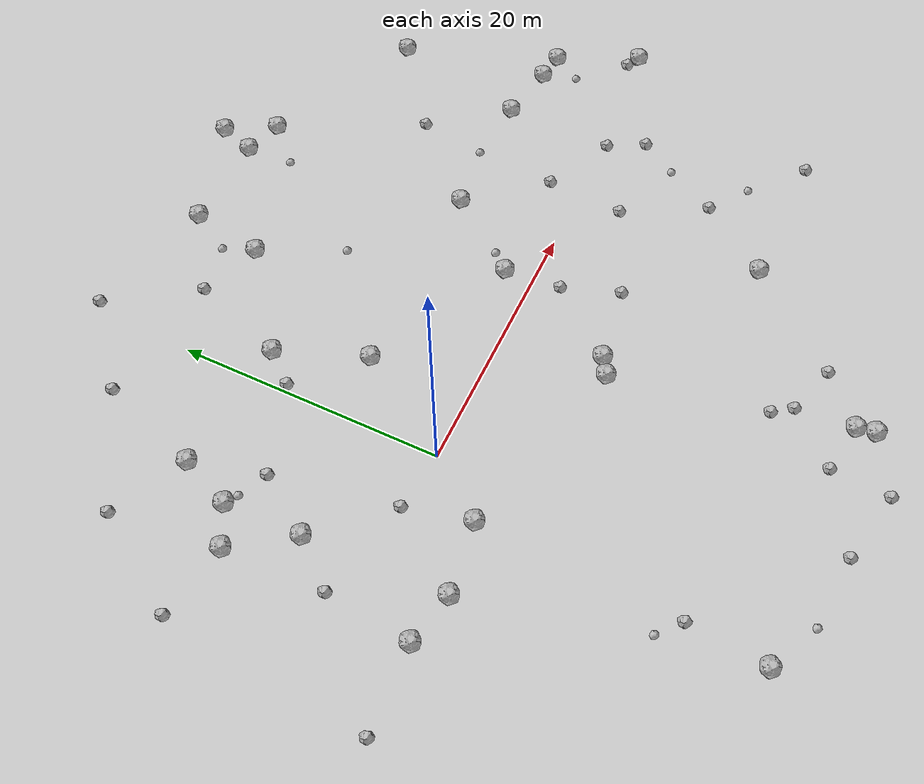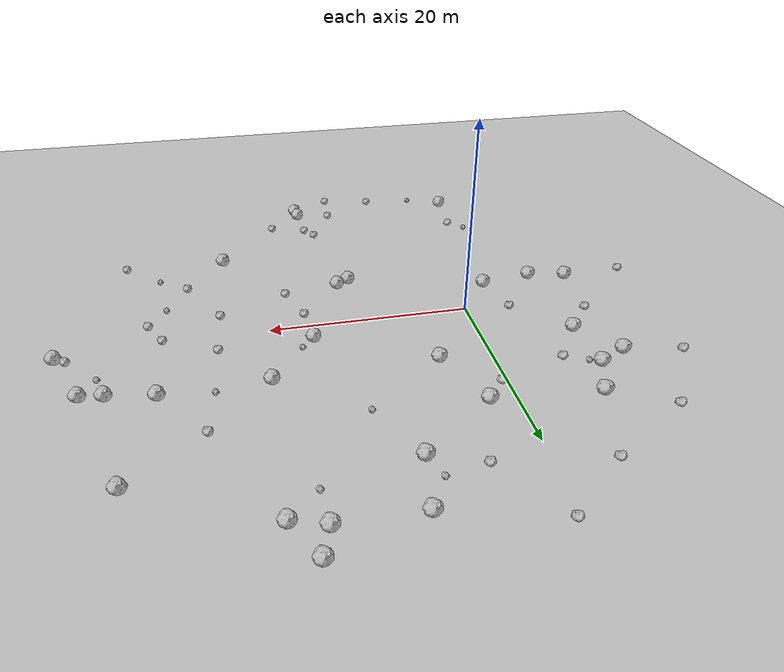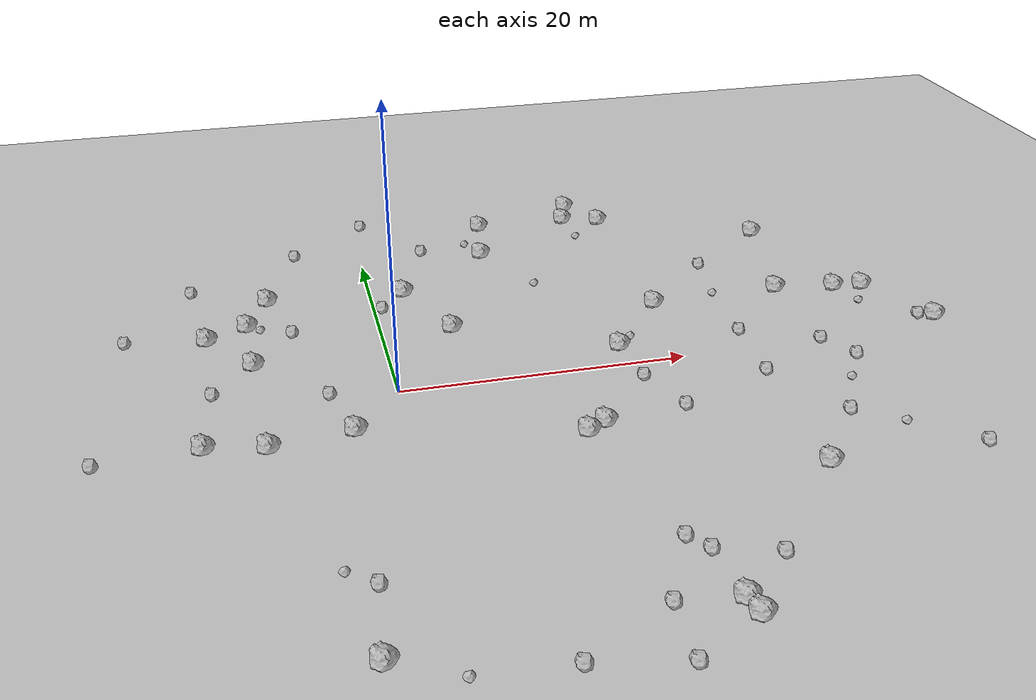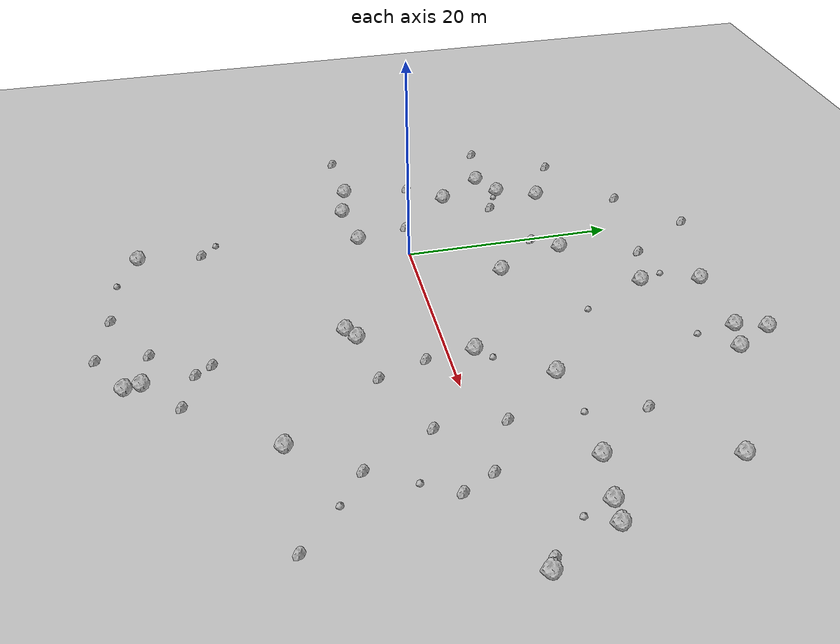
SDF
<sdf version="1.6">
 <world name="default">
  <include><uri>model://custom_ground</uri></include>
  <include><uri>model://sun</uri></include>
  <model name="rock1_0_0">
   <include><uri>model://rock1</uri><pose>-9.325859273268861 11.395108314160183 0.5 0 0 0</pose></include>
  </model>
  <model name="rock1_0_1">
   <include><uri>model://rock1</uri><pose>32.77272916011381 18.821326434862648 0.5 0 0 0</pose></include>
  </model>
  <model name="rock1_0_2">
   <include><uri>model://rock1</uri><pose>20.494058716048002 8.036670395638183 0.5 0 0 0</pose></include>
  </model>
  <model name="rock1_0_3">
   <include><uri>model://rock1</uri><pose>-9.165816178152784 5.538716321322738 0.5 0 0 0</pose></include>
  </model>
  <model name="rock1_0_4">
   <include><uri>model://rock1</uri><pose>34.89038393754093 7.5048193109880685 0.5 0 0 0</pose></include>
  </model>
  <model name="rock1_0_5">
   <include><uri>model://rock1</uri><pose>24.081980462925678 -14.849077184002226 0.5 0 0 0</pose></include>
  </model>
  <model name="rock1_0_6">
   <include><uri>model://rock1</uri><pose>10.88490199903103 -8.038815499362173 0.5 0 0 0</pose></include>
  </model>
  <model name="rock1_0_7">
   <include><uri>model://rock1</uri><pose>30.420932146796986 8.31368439147991 0.5 0 0 0</pose></include>
  </model>
  <model name="rock1_0_8">
   <include><uri>model://rock1</uri><pose>16.025471272302447 2.2451898496656995 0.5 0 0 0</pose></include>
  </model>
  <model name="rock1_0_9">
   <include><uri>model://rock1</uri><pose>-4.446693546395309 -25.61087649749245 0.5 0 0 0</pose></include>
  </model>
  <model name="rock1_0_10">
   <include><uri>model://rock1</uri><pose>12.208705323214964 -7.2310050316699765 0.5 0 0 0</pose></include>
  </model>
  <model name="rock1_0_11">
   <include><uri>model://rock1</uri><pose>2.5135233519100737 14.421944765956056 0.5 0 0 0</pose></include>
  </model>
  <model name="rock1_0_12">
   <include><uri>model://rock1</uri><pose>17.959134334480666 25.324735297423487 0.5 0 0 0</pose></include>
  </model>
  <model name="rock1_0_13">
   <include><uri>model://rock1</uri><pose>14.369802817539686 -25.350690073815702 0.5 0 0 0</pose></include>
  </model>
  <model name="rock1_0_14">
   <include><uri>model://rock1</uri><pose>20.868182732373143 24.396816842527883 0.5 0 0 0</pose></include>
  </model>
  <model name="rock1_0_15">
   <include><uri>model://rock1</uri><pose>-7.668985724154286 15.28530597783648 0.5 0 0 0</pose></include>
  </model>
  <model name="rock1_0_16">
   <include><uri>model://rock1</uri><pose>37.08834178905631 7.186391828840122 0.5 0 0 0</pose></include>
  </model>
  <model name="rock1_0_17">
   <include><uri>model://rock1</uri><pose>18.8651854831828 28.037462194587967 0.5 0 0 0</pose></include>
  </model>
  <model name="rock1_0_18">
   <include><uri>model://rock1</uri><pose>9.676334513105505 19.94417882393501 0.5 0 0 0</pose></include>
  </model>
  <model name="rock1_0_19">
   <include><uri>model://rock1</uri><pose>39.963123794459506 1.1491976966194954 0.5 0 0 0</pose></include>
  </model>
  <model name="rock1_0_20">
   <include><uri>model://rock1</uri><pose>-3.311976631417256 -4.443405541984745 0.5 0 0 0</pose></include>
  </model>
  <model name="rock1_0_21">
   <include><uri>model://rock1</uri><pose>10.652464035186199 25.46317277084769 0.5 0 0 0</pose></include>
  </model>
  <model name="rock1_0_22">
   <include><uri>model://rock1</uri><pose>5.069408518328014 7.792026259948464 0.5 0 0 0</pose></include>
  </model>
  <model name="rock1_0_23">
   <include><uri>model://rock1</uri><pose>-8.742508466582686 -5.184591756139284 0.5 0 0 0</pose></include>
  </model>
  <model name="rock1_0_24">
   <include><uri>model://rock1</uri><pose>14.625728409789836 -26.738669928540666 0.5 0 0 0</pose></include>
  </model>
  <model name="rock1_0_25">
   <include><uri>model://rock1</uri><pose>-12.198082013211282 9.900188176174645 0.5 0 0 0</pose></include>
  </model>
  <model name="rock1_0_26">
   <include><uri>model://rock1</uri><pose>-12.65587395111057 -4.35016123043259 0.5 0 0 0</pose></include>
  </model>
  <model name="rock2_0_0">
   <include><uri>model://rock2</uri><pose>-17.8799409010483 10.950787790465327 0.3 0 0 0</pose></include>
  </model>
  <model name="rock2_0_1">
   <include><uri>model://rock2</uri><pose>10.549829539883216 -24.709167111648803 0.3 0 0 0</pose></include>
  </model>
  <model name="rock2_0_2">
   <include><uri>model://rock2</uri><pose>34.60235385883319 -14.994394415011579 0.3 0 0 0</pose></include>
  </model>
  <model name="rock2_0_3">
   <include><uri>model://rock2</uri><pose>26.15279913652845 13.871309525150672 0.3 0 0 0</pose></include>
  </model>
  <model name="rock2_0_4">
   <include><uri>model://rock2</uri><pose>0.5409424549066912 12.16054857589652 0.3 0 0 0</pose></include>
  </model>
  <model name="rock2_0_5">
   <include><uri>model://rock2</uri><pose>16.370242271537272 -2.0737238437990726 0.3 0 0 0</pose></include>
  </model>
  <model name="rock2_0_6">
   <include><uri>model://rock2</uri><pose>13.031889078616693 -19.600325787458896 0.3 0 0 0</pose></include>
  </model>
  <model name="rock2_0_7">
   <include><uri>model://rock2</uri><pose>38.86930375528399 1.7307108480326399 0.3 0 0 0</pose></include>
  </model>
  <model name="rock2_0_8">
   <include><uri>model://rock2</uri><pose>-4.502110147065704 0.519439138335251 0.3 0 0 0</pose></include>
  </model>
  <model name="rock2_0_9">
   <include><uri>model://rock2</uri><pose>17.84963579860517 -6.374676612121043 0.3 0 0 0</pose></include>
  </model>
  <model name="rock2_0_10">
   <include><uri>model://rock2</uri><pose>31.70390754713133 -2.775661783326573 0.3 0 0 0</pose></include>
  </model>
  <model name="rock2_0_11">
   <include><uri>model://rock2</uri><pose>-5.102845605135602 23.085767348932443 0.3 0 0 0</pose></include>
  </model>
  <model name="rock2_0_12">
   <include><uri>model://rock2</uri><pose>-19.253556270881262 -4.656369448009599 0.3 0 0 0</pose></include>
  </model>
  <model name="rock2_0_13">
   <include><uri>model://rock2</uri><pose>-3.9273610354467756 -19.665570519971027 0.3 0 0 0</pose></include>
  </model>
  <model name="rock2_0_14">
   <include><uri>model://rock2</uri><pose>14.0269032404766 -21.011562440827902 0.3 0 0 0</pose></include>
  </model>
  <model name="rock2_0_15">
   <include><uri>model://rock2</uri><pose>-13.260986676541012 18.145455253565466 0.3 0 0 0</pose></include>
  </model>
  <model name="rock2_0_16">
   <include><uri>model://rock2</uri><pose>4.861513205942071 -27.974720390312612 0.3 0 0 0</pose></include>
  </model>
  <model name="rock2_0_17">
   <include><uri>model://rock2</uri><pose>25.057790312450898 2.5351799585521633 0.3 0 0 0</pose></include>
  </model>
  <model name="rock2_0_18">
   <include><uri>model://rock2</uri><pose>27.954919649679837 -9.464542206046485 0.3 0 0 0</pose></include>
  </model>
  <model name="rock2_0_19">
   <include><uri>model://rock2</uri><pose>0.7840664554753403 28.02637640429807 0.3 0 0 0</pose></include>
  </model>
  <model name="rock2_0_20">
   <include><uri>model://rock2</uri><pose>17.836531842781312 -22.24457372562164 0.3 0 0 0</pose></include>
  </model>
  <model name="rock2_0_21">
   <include><uri>model://rock2</uri><pose>-12.029163968752215 2.221237230681325 0.3 0 0 0</pose></include>
  </model>
  <model name="rock2_0_22">
   <include><uri>model://rock2</uri><pose>24.703523809423274 -3.386550913699754 0.3 0 0 0</pose></include>
  </model>
  <model name="rock2_0_23">
   <include><uri>model://rock2</uri><pose>30.255165122852667 -0.03410394703698216 0.3 0 0 0</pose></include>
  </model>
  <model name="rock2_0_24">
   <include><uri>model://rock2</uri><pose>-6.252732623995591 9.850617056484062 0.3 0 0 0</pose></include>
  </model>
  <model name="rock2_0_25">
   <include><uri>model://rock2</uri><pose>10.271568132064196 -29.145145655219213 0.3 0 0 0</pose></include>
  </model>
  <model name="rock2_0_26">
   <include><uri>model://rock2</uri><pose>4.990154005364854 21.653377611294715 0.3 0 0 0</pose></include>
  </model>
  <model name="rock3_0_0">
   <include><uri>model://rock3</uri><pose>17.182094434907526 3.5428621270636853 0.2 0 0 0</pose></include>
  </model>
  <model name="rock3_0_1">
   <include><uri>model://rock3</uri><pose>18.146931699916735 21.752808638489135 0.2 0 0 0</pose></include>
  </model>
  <model name="rock3_0_2">
   <include><uri>model://rock3</uri><pose>8.735691609603215 22.29495806142831 0.2 0 0 0</pose></include>
  </model>
  <model name="rock3_0_3">
   <include><uri>model://rock3</uri><pose>25.403453814979407 8.72551856994675 0.2 0 0 0</pose></include>
  </model>
  <model name="rock3_0_4">
   <include><uri>model://rock3</uri><pose>-5.572813345681368 -18.239281273946112 0.2 0 0 0</pose></include>
  </model>
  <model name="rock3_0_5">
   <include><uri>model://rock3</uri><pose>35.715701546263226 4.9253790221809695 0.2 0 0 0</pose></include>
  </model>
  <model name="rock3_0_6">
   <include><uri>model://rock3</uri><pose>-8.456783466329153 10.829045693292883 0.2 0 0 0</pose></include>
  </model>
  <model name="rock3_0_7">
   <include><uri>model://rock3</uri><pose>30.820561977251486 -11.643811960863587 0.2 0 0 0</pose></include>
  </model>
  <model name="rock3_0_8">
   <include><uri>model://rock3</uri><pose>12.585461517901216 13.7219471492782 0.2 0 0 0</pose></include>
  </model>
  <model name="rock3_0_9">
   <include><uri>model://rock3</uri><pose>-0.6884026025642171 -27.5547886665812 0.2 0 0 0</pose></include>
  </model>
  <model name="rock3_0_10">
   <include><uri>model://rock3</uri><pose>29.983966981179535 -5.618255158017973 0.2 0 0 0</pose></include>
  </model>
 </world>
</sdf>
